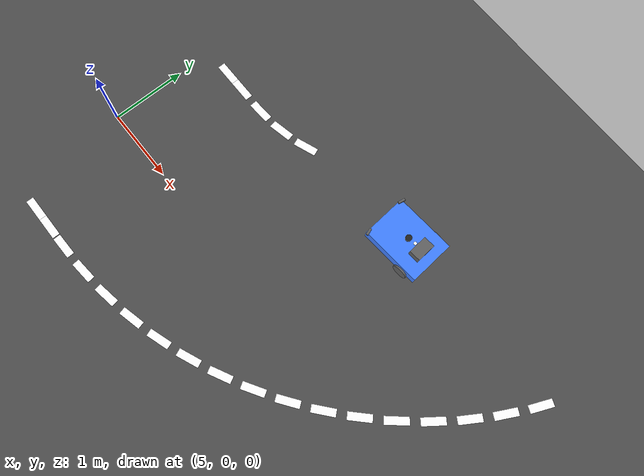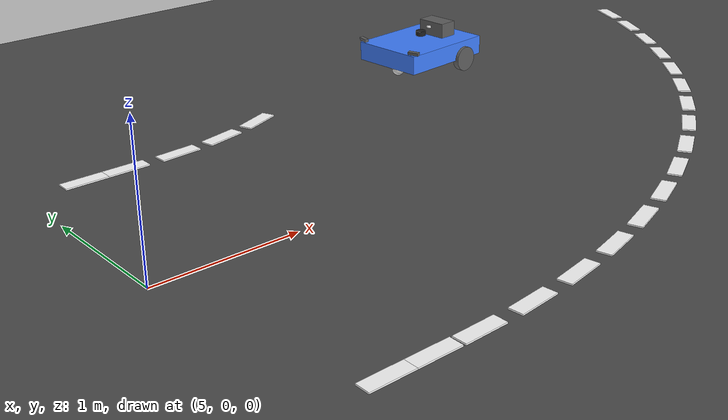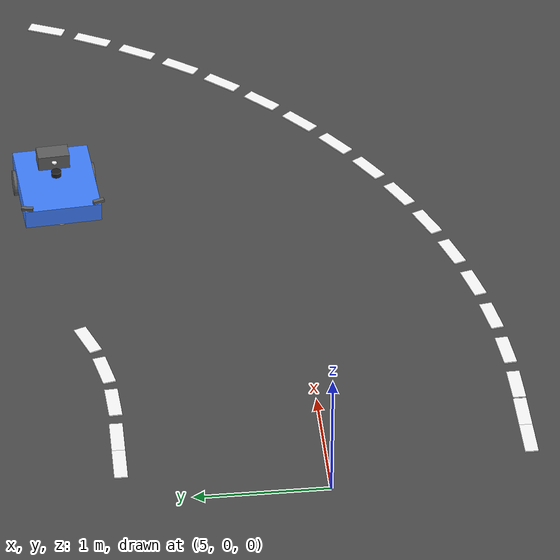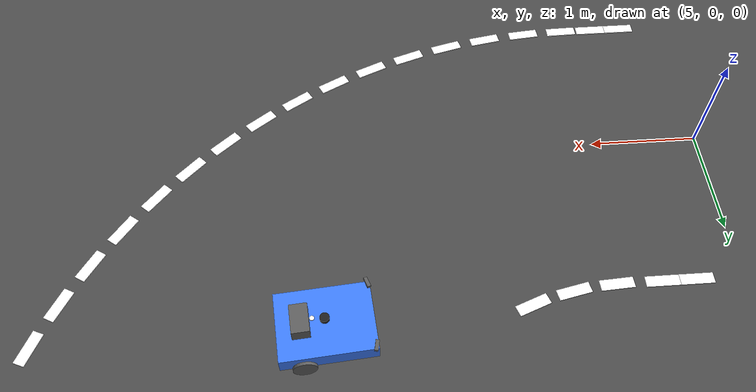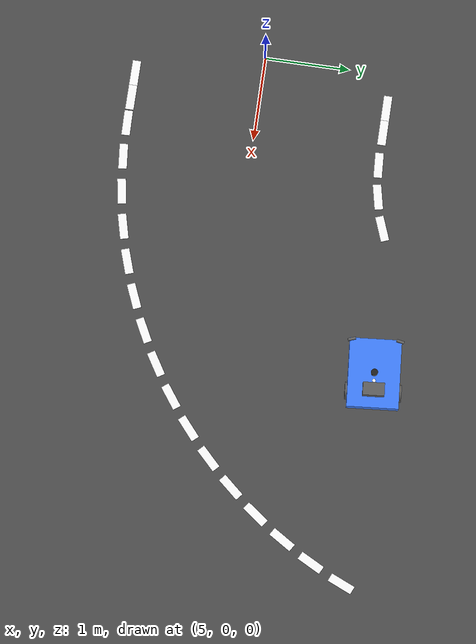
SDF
<sdf version="1.10">
 <world name="igvc_autonav">
  <model name="ground_plane">
   <static>true</static>
   <link name="link">
    <collision name="collision">
     <geometry><plane><normal>0 0 1</normal><size>60 60</size></plane></geometry>
     <surface><friction><ode><mu>0.80000000000000004</mu><mu2>0.80000000000000004</mu2></ode></friction></surface>
    </collision>
    <visual name="visual">
     <geometry><plane><normal>0 0 1</normal><size>60 60</size></plane></geometry>
     <material>
      <ambient>0.25 0.25 0.25 1</ambient>
      <diffuse>0.300000012 0.300000012 0.300000012 1</diffuse>
      <specular>0.100000001 0.100000001 0.100000001 1</specular>
     </material>
    </visual>
    <inertial>
     <mass>1</mass>
     <inertia><ixx>1</ixx><ixy>0</ixy><ixz>0</ixz><iyy>1</iyy><iyz>0</iyz><izz>1</izz></inertia>
    </inertial>
   </link>
  </model>
  <model name="lane_inner_31">
   <static>true</static>
   <pose>5.4000000000000004 1.5 0.01 0 0 0</pose>
   <link name="link">
    <visual name="visual">
     <geometry><box><size>0.29999999999999999 0.10000000000000001 0.01</size></box></geometry>
     <material><ambient>1 1 1 1</ambient><diffuse>1 1 1 1</diffuse><emissive>1 1 1 1</emissive></material>
    </visual>
    <inertial>
     <mass>1</mass>
     <inertia><ixx>1</ixx><ixy>0</ixy><ixz>0</ixz><iyy>1</iyy><iyz>0</iyz><izz>1</izz></inertia>
    </inertial>
   </link>
  </model>
  <model name="lane_inner_32">
   <static>true</static>
   <pose>5.7000000000000002 1.5 0.01 0 0 0</pose>
   <link name="link">
    <visual name="visual">
     <geometry><box><size>0.29999999999999999 0.10000000000000001 0.01</size></box></geometry>
     <material><ambient>1 1 1 1</ambient><diffuse>1 1 1 1</diffuse><emissive>1 1 1 1</emissive></material>
    </visual>
    <inertial>
     <mass>1</mass>
     <inertia><ixx>1</ixx><ixy>0</ixy><ixz>0</ixz><iyy>1</iyy><iyz>0</iyz><izz>1</izz></inertia>
    </inertial>
   </link>
  </model>
  <model name="lane_inner_33">
   <static>true</static>
   <pose>6.0957999999999997 1.5018 0.01 0 0 0.057500000000000002</pose>
   <link name="link">
    <visual name="visual">
     <geometry><box><size>0.29999999999999999 0.10000000000000001 0.01</size></box></geometry>
     <material><ambient>1 1 1 1</ambient><diffuse>1 1 1 1</diffuse><emissive>1 1 1 1</emissive></material>
    </visual>
    <inertial>
     <mass>1</mass>
     <inertia><ixx>1</ixx><ixy>0</ixy><ixz>0</ixz><iyy>1</iyy><iyz>0</iyz><izz>1</izz></inertia>
    </inertial>
   </link>
  </model>
  <model name="lane_inner_34">
   <static>true</static>
   <pose>6.476 1.5457000000000001 0.01 0 0 0.2107</pose>
   <link name="link">
    <visual name="visual">
     <geometry><box><size>0.29999999999999999 0.10000000000000001 0.01</size></box></geometry>
     <material><ambient>1 1 1 1</ambient><diffuse>1 1 1 1</diffuse><emissive>1 1 1 1</emissive></material>
    </visual>
    <inertial>
     <mass>1</mass>
     <inertia><ixx>1</ixx><ixy>0</ixy><ixz>0</ixz><iyy>1</iyy><iyz>0</iyz><izz>1</izz></inertia>
    </inertial>
   </link>
  </model>
  <model name="lane_inner_35">
   <static>true</static>
   <pose>6.8449999999999998 1.6471 0.01 0 0 0.36399999999999999</pose>
   <link name="link">
    <visual name="visual">
     <geometry><box><size>0.29999999999999999 0.10000000000000001 0.01</size></box></geometry>
     <material><ambient>1 1 1 1</ambient><diffuse>1 1 1 1</diffuse><emissive>1 1 1 1</emissive></material>
    </visual>
    <inertial>
     <mass>1</mass>
     <inertia><ixx>1</ixx><ixy>0</ixy><ixz>0</ixz><iyy>1</iyy><iyz>0</iyz><izz>1</izz></inertia>
    </inertial>
   </link>
  </model>
  <model name="lane_outer_31">
   <static>true</static>
   <pose>5.4000000000000004 -1.5 0.01 0 0 0</pose>
   <link name="link">
    <visual name="visual">
     <geometry><box><size>0.29999999999999999 0.10000000000000001 0.01</size></box></geometry>
     <material><ambient>1 1 1 1</ambient><diffuse>1 1 1 1</diffuse><emissive>1 1 1 1</emissive></material>
    </visual>
    <inertial>
     <mass>1</mass>
     <inertia><ixx>1</ixx><ixy>0</ixy><ixz>0</ixz><iyy>1</iyy><iyz>0</iyz><izz>1</izz></inertia>
    </inertial>
   </link>
  </model>
  <model name="lane_outer_32">
   <static>true</static>
   <pose>5.7000000000000002 -1.5 0.01 0 0 0</pose>
   <link name="link">
    <visual name="visual">
     <geometry><box><size>0.29999999999999999 0.10000000000000001 0.01</size></box></geometry>
     <material><ambient>1 1 1 1</ambient><diffuse>1 1 1 1</diffuse><emissive>1 1 1 1</emissive></material>
    </visual>
    <inertial>
     <mass>1</mass>
     <inertia><ixx>1</ixx><ixy>0</ixy><ixz>0</ixz><iyy>1</iyy><iyz>0</iyz><izz>1</izz></inertia>
    </inertial>
   </link>
  </model>
  <model name="lane_outer_33">
   <static>true</static>
   <pose>6.0145 -1.4999 0.01 0 0 0.020200000000000006</pose>
   <link name="link">
    <visual name="visual">
     <geometry><box><size>0.29999999999999999 0.10000000000000001 0.01</size></box></geometry>
     <material><ambient>1 1 1 1</ambient><diffuse>1 1 1 1</diffuse><emissive>1 1 1 1</emissive></material>
    </visual>
    <inertial>
     <mass>1</mass>
     <inertia><ixx>1</ixx><ixy>0</ixy><ixz>0</ixz><iyy>1</iyy><iyz>0</iyz><izz>1</izz></inertia>
    </inertial>
   </link>
  </model>
  <model name="lane_outer_34">
   <static>true</static>
   <pose>6.4210000000000003 -1.4839 0.01 0 0 0.095799999999999996</pose>
   <link name="link">
    <visual name="visual">
     <geometry><box><size>0.29999999999999999 0.10000000000000001 0.01</size></box></geometry>
     <material><ambient>1 1 1 1</ambient><diffuse>1 1 1 1</diffuse><emissive>1 1 1 1</emissive></material>
    </visual>
    <inertial>
     <mass>1</mass>
     <inertia><ixx>1</ixx><ixy>0</ixy><ixz>0</ixz><iyy>1</iyy><iyz>0</iyz><izz>1</izz></inertia>
    </inertial>
   </link>
  </model>
  <model name="lane_outer_35">
   <static>true</static>
   <pose>6.8395999999999999 -1.4355 0.01 0 0 0.1724</pose>
   <link name="link">
    <visual name="visual">
     <geometry><box><size>0.29999999999999999 0.10000000000000001 0.01</size></box></geometry>
     <material><ambient>1 1 1 1</ambient><diffuse>1 1 1 1</diffuse><emissive>1 1 1 1</emissive></material>
    </visual>
    <inertial>
     <mass>1</mass>
     <inertia><ixx>1</ixx><ixy>0</ixy><ixz>0</ixz><iyy>1</iyy><iyz>0</iyz><izz>1</izz></inertia>
    </inertial>
   </link>
  </model>
  <model name="lane_outer_36">
   <static>true</static>
   <pose>7.2531999999999996 -1.3552999999999999 0.01 0 0 0.24899999999999994</pose>
   <link name="link">
    <visual name="visual">
     <geometry><box><size>0.29999999999999999 0.10000000000000001 0.01</size></box></geometry>
     <material><ambient>1 1 1 1</ambient><diffuse>1 1 1 1</diffuse><emissive>1 1 1 1</emissive></material>
    </visual>
    <inertial>
     <mass>1</mass>
     <inertia><ixx>1</ixx><ixy>0</ixy><ixz>0</ixz><iyy>1</iyy><iyz>0</iyz><izz>1</izz></inertia>
    </inertial>
   </link>
  </model>
  <model name="lane_outer_37">
   <static>true</static>
   <pose>7.6595000000000004 -1.2437 0.01 0 0 0.3257000000000001</pose>
   <link name="link">
    <visual name="visual">
     <geometry><box><size>0.29999999999999999 0.10000000000000001 0.01</size></box></geometry>
     <material><ambient>1 1 1 1</ambient><diffuse>1 1 1 1</diffuse><emissive>1 1 1 1</emissive></material>
    </visual>
    <inertial>
     <mass>1</mass>
     <inertia><ixx>1</ixx><ixy>0</ixy><ixz>0</ixz><iyy>1</iyy><iyz>0</iyz><izz>1</izz></inertia>
    </inertial>
   </link>
  </model>
  <model name="lane_outer_38">
   <static>true</static>
   <pose>8.0559999999999992 -1.1012999999999999 0.01 0 0 0.40229999999999999</pose>
   <link name="link">
    <visual name="visual">
     <geometry><box><size>0.29999999999999999 0.10000000000000001 0.01</size></box></geometry>
     <material><ambient>1 1 1 1</ambient><diffuse>1 1 1 1</diffuse><emissive>1 1 1 1</emissive></material>
    </visual>
    <inertial>
     <mass>1</mass>
     <inertia><ixx>1</ixx><ixy>0</ixy><ixz>0</ixz><iyy>1</iyy><iyz>0</iyz><izz>1</izz></inertia>
    </inertial>
   </link>
  </model>
  <model name="lane_outer_39">
   <static>true</static>
   <pose>8.4405000000000001 -0.92889999999999995 0.01 0 0 0.4789000000000001</pose>
   <link name="link">
    <visual name="visual">
     <geometry><box><size>0.29999999999999999 0.10000000000000001 0.01</size></box></geometry>
     <material><ambient>1 1 1 1</ambient><diffuse>1 1 1 1</diffuse><emissive>1 1 1 1</emissive></material>
    </visual>
    <inertial>
     <mass>1</mass>
     <inertia><ixx>1</ixx><ixy>0</ixy><ixz>0</ixz><iyy>1</iyy><iyz>0</iyz><izz>1</izz></inertia>
    </inertial>
   </link>
  </model>
  <model name="lane_outer_40">
   <static>true</static>
   <pose>8.8106000000000009 -0.72760000000000002 0.01 0 0 0.55549999999999999</pose>
   <link name="link">
    <visual name="visual">
     <geometry><box><size>0.29999999999999999 0.10000000000000001 0.01</size></box></geometry>
     <material><ambient>1 1 1 1</ambient><diffuse>1 1 1 1</diffuse><emissive>1 1 1 1</emissive></material>
    </visual>
    <inertial>
     <mass>1</mass>
     <inertia><ixx>1</ixx><ixy>0</ixy><ixz>0</ixz><iyy>1</iyy><iyz>0</iyz><izz>1</izz></inertia>
    </inertial>
   </link>
  </model>
  <model name="lane_outer_41">
   <static>true</static>
   <pose>9.1643000000000008 -0.49859999999999999 0.01 0 0 0.63210000000000011</pose>
   <link name="link">
    <visual name="visual">
     <geometry><box><size>0.29999999999999999 0.10000000000000001 0.01</size></box></geometry>
     <material><ambient>1 1 1 1</ambient><diffuse>1 1 1 1</diffuse><emissive>1 1 1 1</emissive></material>
    </visual>
    <inertial>
     <mass>1</mass>
     <inertia><ixx>1</ixx><ixy>0</ixy><ixz>0</ixz><iyy>1</iyy><iyz>0</iyz><izz>1</izz></inertia>
    </inertial>
   </link>
  </model>
  <model name="lane_outer_42">
   <static>true</static>
   <pose>9.4992999999999999 -0.2432 0.01 0 0 0.70879999999999999</pose>
   <link name="link">
    <visual name="visual">
     <geometry><box><size>0.29999999999999999 0.10000000000000001 0.01</size></box></geometry>
     <material><ambient>1 1 1 1</ambient><diffuse>1 1 1 1</diffuse><emissive>1 1 1 1</emissive></material>
    </visual>
    <inertial>
     <mass>1</mass>
     <inertia><ixx>1</ixx><ixy>0</ixy><ixz>0</ixz><iyy>1</iyy><iyz>0</iyz><izz>1</izz></inertia>
    </inertial>
   </link>
  </model>
  <model name="lane_outer_43">
   <static>true</static>
   <pose>9.8139000000000003 0.037100000000000001 0.01 0 0 0.7854000000000001</pose>
   <link name="link">
    <visual name="visual">
     <geometry><box><size>0.29999999999999999 0.10000000000000001 0.01</size></box></geometry>
     <material><ambient>1 1 1 1</ambient><diffuse>1 1 1 1</diffuse><emissive>1 1 1 1</emissive></material>
    </visual>
    <inertial>
     <mass>1</mass>
     <inertia><ixx>1</ixx><ixy>0</ixy><ixz>0</ixz><iyy>1</iyy><iyz>0</iyz><izz>1</izz></inertia>
    </inertial>
   </link>
  </model>
  <model name="lane_outer_44">
   <static>true</static>
   <pose>10.106 0.3407 0.01 0 0 0.86199999999999977</pose>
   <link name="link">
    <visual name="visual">
     <geometry><box><size>0.29999999999999999 0.10000000000000001 0.01</size></box></geometry>
     <material><ambient>1 1 1 1</ambient><diffuse>1 1 1 1</diffuse><emissive>1 1 1 1</emissive></material>
    </visual>
    <inertial>
     <mass>1</mass>
     <inertia><ixx>1</ixx><ixy>0</ixy><ixz>0</ixz><iyy>1</iyy><iyz>0</iyz><izz>1</izz></inertia>
    </inertial>
   </link>
  </model>
  <model name="lane_outer_45">
   <static>true</static>
   <pose>10.3741 0.66579999999999995 0.01 0 0 0.93859999999999977</pose>
   <link name="link">
    <visual name="visual">
     <geometry><box><size>0.29999999999999999 0.10000000000000001 0.01</size></box></geometry>
     <material><ambient>1 1 1 1</ambient><diffuse>1 1 1 1</diffuse><emissive>1 1 1 1</emissive></material>
    </visual>
    <inertial>
     <mass>1</mass>
     <inertia><ixx>1</ixx><ixy>0</ixy><ixz>0</ixz><iyy>1</iyy><iyz>0</iyz><izz>1</izz></inertia>
    </inertial>
   </link>
  </model>
  <model name="lane_outer_46">
   <static>true</static>
   <pose>10.6165 1.0104 0.01 0 0 1.0153000000000001</pose>
   <link name="link">
    <visual name="visual">
     <geometry><box><size>0.29999999999999999 0.10000000000000001 0.01</size></box></geometry>
     <material><ambient>1 1 1 1</ambient><diffuse>1 1 1 1</diffuse><emissive>1 1 1 1</emissive></material>
    </visual>
    <inertial>
     <mass>1</mass>
     <inertia><ixx>1</ixx><ixy>0</ixy><ixz>0</ixz><iyy>1</iyy><iyz>0</iyz><izz>1</izz></inertia>
    </inertial>
   </link>
  </model>
  <model name="lane_outer_47">
   <static>true</static>
   <pose>10.831799999999999 1.3725000000000001 0.01 0 0 1.0919000000000001</pose>
   <link name="link">
    <visual name="visual">
     <geometry><box><size>0.29999999999999999 0.10000000000000001 0.01</size></box></geometry>
     <material><ambient>1 1 1 1</ambient><diffuse>1 1 1 1</diffuse><emissive>1 1 1 1</emissive></material>
    </visual>
    <inertial>
     <mass>1</mass>
     <inertia><ixx>1</ixx><ixy>0</ixy><ixz>0</ixz><iyy>1</iyy><iyz>0</iyz><izz>1</izz></inertia>
    </inertial>
   </link>
  </model>
  <model name="lane_outer_48">
   <static>true</static>
   <pose>11.018800000000001 1.7501 0.01 0 0 1.1684999999999999</pose>
   <link name="link">
    <visual name="visual">
     <geometry><box><size>0.29999999999999999 0.10000000000000001 0.01</size></box></geometry>
     <material><ambient>1 1 1 1</ambient><diffuse>1 1 1 1</diffuse><emissive>1 1 1 1</emissive></material>
    </visual>
    <inertial>
     <mass>1</mass>
     <inertia><ixx>1</ixx><ixy>0</ixy><ixz>0</ixz><iyy>1</iyy><iyz>0</iyz><izz>1</izz></inertia>
    </inertial>
   </link>
  </model>
  <model name="littleblue">
   <link name="base_footprint">
    <inertial>
     <pose>0.0052110490378646799 0 0.10789804469273739 0 0 0</pose>
     <mass>21.48</mass>
     <inertia>
      <ixx>0.69560734671787716</ixx>
      <ixy>0</ixy>
      <ixz>0.01548872113594041</ixz>
      <iyy>1.232266278851128</iyy>
      <iyz>8.6736173798840355e-19</iyz>
      <izz>1.772994932133251</izz>
     </inertia>
    </inertial>
    <collision name="base_footprint_fixed_joint_lump__base_link_collision">
     <pose>0 0 0.17499999999999999 0 0 0</pose>
     <geometry><box><size>0.80000000000000004 0.59999999999999998 0.14999999999999999</size></box></geometry>
    </collision>
    <collision name="base_footprint_fixed_joint_lump__caster_link_collision_1">
     <pose>0.26666666666666672 0 0.050000000000000003 0 0 0</pose>
     <geometry><sphere><radius>0.050000000000000003</radius></sphere></geometry>
     <surface><friction><ode><mu>0</mu><mu2>0</mu2></ode></friction></surface>
    </collision>
    <collision name="base_footprint_fixed_joint_lump__left_camera_link_collision_2">
     <pose>0.38 0.28000000000000003 0.27000000000000002 -1.5675956063271568e-17 0.090000000000000191 0.26000000000000001</pose>
     <geometry><box><size>0.029999999999999999 0.089999999999999997 0.025000000000000001</size></box></geometry>
    </collision>
    <collision name="base_footprint_fixed_joint_lump__lidar_link_collision_3">
     <pose>0 0 0.29999999999999999 0 0 0</pose>
     <geometry>
      <cylinder><length>0.040000000000000001</length><radius>0.040000000000000001</radius></cylinder>
     </geometry>
    </collision>
    <collision name="base_footprint_fixed_joint_lump__rear_electronics_link_collision_4">
     <pose>-0.20000000000000001 0 0.31 0 0 0</pose>
     <geometry><box><size>0.14999999999999999 0.25 0.12</size></box></geometry>
    </collision>
    <collision name="base_footprint_fixed_joint_lump__right_camera_link_collision_5">
     <pose>0.38 -0.28000000000000003 0.27000000000000002 1.5675956063271568e-17 0.090000000000000191 -0.26000000000000001</pose>
     <geometry><box><size>0.029999999999999999 0.089999999999999997 0.025000000000000001</size></box></geometry>
    </collision>
    <visual name="base_footprint_fixed_joint_lump__base_link_visual">
     <pose>0 0 0.17499999999999999 0 0 0</pose>
     <geometry><box><size>0.80000000000000004 0.59999999999999998 0.14999999999999999</size></box></geometry>
     <material><diffuse>0.25 0.5 1 1</diffuse><ambient>0.25 0.5 1 1</ambient></material>
    </visual>
    <visual name="base_footprint_fixed_joint_lump__caster_link_visual_1">
     <pose>0.26666666666666672 0 0.050000000000000003 0 0 0</pose>
     <geometry><sphere><radius>0.050000000000000003</radius></sphere></geometry>
     <material><diffuse>0.875 0.875 0.875 1</diffuse><ambient>0.875 0.875 0.875 1</ambient></material>
    </visual>
    <visual name="base_footprint_fixed_joint_lump__gps_link_visual_2">
     <pose>-0.10000000000000001 0 0.33000000000000002 0 0 0</pose>
     <geometry><cylinder><length>0.01</length><radius>0.02</radius></cylinder></geometry>
     <material><diffuse>1 1 1 1</diffuse><ambient>1 1 1 1</ambient></material>
    </visual>
    <visual name="base_footprint_fixed_joint_lump__left_camera_link_visual_3">
     <pose>0.38 0.28000000000000003 0.27000000000000002 -1.5675956063271568e-17 0.090000000000000191 0.26000000000000001</pose>
     <geometry><box><size>0.029999999999999999 0.089999999999999997 0.025000000000000001</size></box></geometry>
     <material>
      <diffuse>0.37500003 0.37500003 0.37500003 1</diffuse>
      <ambient>0.37500003 0.37500003 0.37500003 1</ambient>
     </material>
    </visual>
    <visual name="base_footprint_fixed_joint_lump__lidar_link_visual_4">
     <pose>0 0 0.29999999999999999 0 0 0</pose>
     <geometry>
      <cylinder><length>0.040000000000000001</length><radius>0.040000000000000001</radius></cylinder>
     </geometry>
     <material><diffuse>0.125 0.125 0.125 1</diffuse><ambient>0.125 0.125 0.125 1</ambient></material>
    </visual>
    <visual name="base_footprint_fixed_joint_lump__rear_electronics_link_visual_5">
     <pose>-0.20000000000000001 0 0.31 0 0 0</pose>
     <geometry><box><size>0.14999999999999999 0.25 0.12</size></box></geometry>
     <material>
      <diffuse>0.37500003 0.37500003 0.37500003 1</diffuse>
      <ambient>0.37500003 0.37500003 0.37500003 1</ambient>
     </material>
    </visual>
    <visual name="base_footprint_fixed_joint_lump__right_camera_link_visual_6">
     <pose>0.38 -0.28000000000000003 0.27000000000000002 1.5675956063271568e-17 0.090000000000000191 -0.26000000000000001</pose>
     <geometry><box><size>0.029999999999999999 0.089999999999999997 0.025000000000000001</size></box></geometry>
     <material>
      <diffuse>0.37500003 0.37500003 0.37500003 1</diffuse>
      <ambient>0.37500003 0.37500003 0.37500003 1</ambient>
     </material>
    </visual>
    <sensor name="navsat_sensor" type="navsat">
     <always_on>true</always_on>
     <update_rate>1</update_rate>
     <topic>gps/fix</topic>
     <navsat>
      <position_sensing>
       <horizontal><noise type="gaussian"><mean>0</mean><stddev>5.0000000000000004e-06</stddev></noise></horizontal>
       <vertical><noise type="gaussian"><mean>0</mean><stddev>1.0000000000000001e-05</stddev></noise></vertical>
      </position_sensing>
     </navsat>
     <pose>-0.10000000000000001 0 0.33000000000000002 0 0 0</pose>
    </sensor>
    <sensor name="imu_sensor" type="imu">
     <pose>0 0 0.17499999999999999 0 0 0</pose>
     <topic>imu/data</topic>
     <update_rate>100</update_rate>
     <enable_metrics>false</enable_metrics>
     <imu>
      <orientation_reference_frame>
       <localization>CUSTOM</localization>
       <custom_rpy>0 0 0</custom_rpy>
       <grav_dir_x>1 0 0</grav_dir_x>
      </orientation_reference_frame>
      <angular_velocity>
       <x>
        <noise type="gaussian">
         <mean>0</mean>
         <stddev>0.00020000000000000001</stddev>
         <bias_mean>0</bias_mean>
         <bias_stddev>0</bias_stddev>
         <dynamic_bias_stddev>0</dynamic_bias_stddev>
         <dynamic_bias_correlation_time>0</dynamic_bias_correlation_time>
         <precision>0</precision>
        </noise>
       </x>
       <y>
        <noise type="gaussian">
         <mean>0</mean>
         <stddev>0.00020000000000000001</stddev>
         <bias_mean>0</bias_mean>
         <bias_stddev>0</bias_stddev>
         <dynamic_bias_stddev>0</dynamic_bias_stddev>
         <dynamic_bias_correlation_time>0</dynamic_bias_correlation_time>
         <precision>0</precision>
        </noise>
       </y>
       <z>
        <noise type="gaussian">
         <mean>0</mean>
         <stddev>0.00020000000000000001</stddev>
         <bias_mean>0</bias_mean>
         <bias_stddev>0</bias_stddev>
         <dynamic_bias_stddev>0</dynamic_bias_stddev>
         <dynamic_bias_correlation_time>0</dynamic_bias_correlation_time>
         <precision>0</precision>
        </noise>
       </z>
      </angular_velocity>
      <linear_acceleration>
       <x>
        <noise type="gaussian">
         <mean>0</mean>
         <stddev>0.017000000000000001</stddev>
         <bias_mean>0</bias_mean>
         <bias_stddev>0</bias_stddev>
         <dynamic_bias_stddev>0</dynamic_bias_stddev>
         <dynamic_bias_correlation_time>0</dynamic_bias_correlation_time>
         <precision>0</precision>
        </noise>
       </x>
       <y>
        <noise type="gaussian">
         <mean>0</mean>
         <stddev>0.017000000000000001</stddev>
         <bias_mean>0</bias_mean>
         <bias_stddev>0</bias_stddev>
         <dynamic_bias_stddev>0</dynamic_bias_stddev>
         <dynamic_bias_correlation_time>0</dynamic_bias_correlation_time>
         <precision>0</precision>
        </noise>
       </y>
       <z>
        <noise type="gaussian">
         <mean>0</mean>
         <stddev>0.017000000000000001</stddev>
         <bias_mean>0</bias_mean>
         <bias_stddev>0</bias_stddev>
         <dynamic_bias_stddev>0</dynamic_bias_stddev>
         <dynamic_bias_correlation_time>0</dynamic_bias_correlation_time>
         <precision>0</precision>
        </noise>
       </z>
      </linear_acceleration>
      <enable_orientation>true</enable_orientation>
     </imu>
    </sensor>
    <sensor name="left_rgb_camera" type="camera">
     <pose>0.38 0.28000000000000003 0.27000000000000002 -2.4384820542866883e-17 0.090000000000000052 0.26000000000000001</pose>
     <topic>left_camera/image_raw</topic>
     <update_rate>15</update_rate>
     <enable_metrics>false</enable_metrics>
     <camera>
      <horizontal_fov>1.4835</horizontal_fov>
      <image><width>640</width><height>480</height><format>RGB_INT8</format><anti_aliasing>4</anti_aliasing></image>
      <camera_info_topic>__default__</camera_info_topic>
      <triggered>false</triggered>
      <clip><near>0.10000000000000001</near><far>100</far></clip>
      <save enabled="false"><path>__default__</path></save>
      <visibility_mask>4294967295</visibility_mask>
      <noise><type>none</type><mean>0</mean><stddev>0</stddev></noise>
      <distortion><k1>0</k1><k2>0</k2><k3>0</k3><p1>0</p1><p2>0</p2><center>0.5 0.5</center></distortion>
      <lens>
       <type>stereographic</type>
       <scale_to_hfov>true</scale_to_hfov>
       <cutoff_angle>1.5707963267948966</cutoff_angle>
       <env_texture_size>256</env_texture_size>
      </lens>
     </camera>
    </sensor>
    <sensor name="gpu_lidar" type="gpu_lidar">
     <pose>0 0 0.29999999999999999 0 0 0</pose>
     <topic>scan</topic>
     <update_rate>10</update_rate>
     <enable_metrics>false</enable_metrics>
     <lidar>
      <scan>
       <horizontal>
        <samples>270</samples>
        <resolution>1</resolution>
        <min_angle>-2.3561899999999998</min_angle>
        <max_angle>2.3561899999999998</max_angle>
       </horizontal>
       <vertical>
        <samples>1</samples>
        <min_angle>0</min_angle>
        <max_angle>0</max_angle>
        <resolution>1</resolution>
       </vertical>
      </scan>
      <range><min>0.14999999999999999</min><max>30</max><resolution>0.01</resolution></range>
      <noise><type>gaussian</type><mean>0</mean><stddev>0.01</stddev></noise>
      <visibility_mask>4294967295</visibility_mask>
     </lidar>
    </sensor>
    <sensor name="right_rgb_camera" type="camera">
     <pose>0.38 -0.28000000000000003 0.27000000000000002 2.4384820542866883e-17 0.090000000000000052 -0.26000000000000001</pose>
     <topic>right_camera/image_raw</topic>
     <update_rate>15</update_rate>
     <enable_metrics>false</enable_metrics>
     <camera>
      <horizontal_fov>1.4835</horizontal_fov>
      <image><width>640</width><height>480</height><format>RGB_INT8</format><anti_aliasing>4</anti_aliasing></image>
      <camera_info_topic>__default__</camera_info_topic>
      <triggered>false</triggered>
      <clip><near>0.10000000000000001</near><far>100</far></clip>
      <save enabled="false"><path>__default__</path></save>
      <visibility_mask>4294967295</visibility_mask>
      <noise><type>none</type><mean>0</mean><stddev>0</stddev></noise>
      <distortion><k1>0</k1><k2>0</k2><k3>0</k3><p1>0</p1><p2>0</p2><center>0.5 0.5</center></distortion>
      <lens>
       <type>stereographic</type>
       <scale_to_hfov>true</scale_to_hfov>
       <cutoff_angle>1.5707963267948966</cutoff_angle>
       <env_texture_size>256</env_texture_size>
      </lens>
     </camera>
    </sensor>
   </link>
   <joint name="left_wheel_joint" type="revolute">
    <pose>8.3266699999999998e-17 -8.3266699999999998e-17 0 0 5.5511199999999995e-17 0</pose>
    <parent>base_footprint</parent>
    <child>left_wheel_link</child>
    <axis>
     <xyz>1.1102230246251565e-16 0 1</xyz>
     <limit>
      <lower>-inf</lower>
      <upper>inf</upper>
      <effort>inf</effort>
      <velocity>inf</velocity>
      <stiffness>100000000</stiffness>
      <dissipation>1</dissipation>
     </limit>
     <dynamics>
      <spring_reference>0</spring_reference>
      <spring_stiffness>0</spring_stiffness>
      <damping>0.10000000000000001</damping>
      <friction>0.10000000000000001</friction>
     </dynamics>
    </axis>
   </joint>
   <link name="left_wheel_link">
    <pose>-0.20000000000000107 0.30000000000000804 0.099999999999999534 -1.5707963267949023 -0.92028029733366423 5.3164828950280245e-15</pose>
    <inertial>
     <mass>1</mass>
     <inertia>
      <ixx>0.0027083333333333339</ixx>
      <ixy>0</ixy>
      <ixz>0</ixz>
      <iyy>0.0027083333333333339</iyy>
      <iyz>0</iyz>
      <izz>0.005000000000000001</izz>
     </inertia>
    </inertial>
    <collision name="left_wheel_link_collision">
     <geometry>
      <cylinder><length>0.050000000000000003</length><radius>0.10000000000000001</radius></cylinder>
     </geometry>
    </collision>
    <visual name="left_wheel_link_visual">
     <geometry>
      <cylinder><length>0.050000000000000003</length><radius>0.10000000000000001</radius></cylinder>
     </geometry>
     <material>
      <diffuse>0.37500003 0.37500003 0.37500003 1</diffuse>
      <ambient>0.37500003 0.37500003 0.37500003 1</ambient>
     </material>
    </visual>
   </link>
   <joint name="right_wheel_joint" type="revolute">
    <pose>0 -1.6653299999999999e-16 -1.11022e-16 0 0 0</pose>
    <parent>base_footprint</parent>
    <child>right_wheel_link</child>
    <axis>
     <xyz>0 0 1</xyz>
     <limit>
      <lower>-inf</lower>
      <upper>inf</upper>
      <effort>inf</effort>
      <velocity>inf</velocity>
      <stiffness>100000000</stiffness>
      <dissipation>1</dissipation>
     </limit>
     <dynamics>
      <spring_reference>0</spring_reference>
      <spring_stiffness>0</spring_stiffness>
      <damping>0.10000000000000001</damping>
      <friction>0.10000000000000001</friction>
     </dynamics>
    </axis>
   </joint>
   <link name="right_wheel_link">
    <pose>-0.19999999999999751 -0.29999999999999671 0.10000000000000005 -1.5707963267948966 0.18789923830752037 3.5316074259534446e-16</pose>
    <inertial>
     <mass>1</mass>
     <inertia>
      <ixx>0.0027083333333333339</ixx>
      <ixy>0</ixy>
      <ixz>0</ixz>
      <iyy>0.0027083333333333339</iyy>
      <iyz>0</iyz>
      <izz>0.005000000000000001</izz>
     </inertia>
    </inertial>
    <collision name="right_wheel_link_collision">
     <geometry>
      <cylinder><length>0.050000000000000003</length><radius>0.10000000000000001</radius></cylinder>
     </geometry>
    </collision>
    <visual name="right_wheel_link_visual">
     <geometry>
      <cylinder><length>0.050000000000000003</length><radius>0.10000000000000001</radius></cylinder>
     </geometry>
     <material>
      <diffuse>0.37500003 0.37500003 0.37500003 1</diffuse>
      <ambient>0.37500003 0.37500003 0.37500003 1</ambient>
     </material>
    </visual>
   </link>
   <plugin name="ignition::gazebo::systems::DiffDrive" filename="ignition-gazebo-diff-drive-system">
    <left_joint>left_wheel_joint</left_joint>
    <right_joint>right_wheel_joint</right_joint>
    <wheel_separation>0.6000000000000001</wheel_separation>
    <wheel_radius>0.1</wheel_radius>
    <max_linear_acceleration>1.0</max_linear_acceleration>
    <max_angular_acceleration>2.0</max_angular_acceleration>
    <odom_publish_frequency>100</odom_publish_frequency>
    <topic>cmd_vel</topic>
    <odom_topic>odom</odom_topic>
    <tf_topic>tf</tf_topic>
    <frame_id>odom</frame_id>
    <child_frame_id>base_footprint</child_frame_id>
   </plugin>
   <plugin name="ignition::gazebo::systems::JointStatePublisher" filename="ignition-gazebo-joint-state-publisher-system">
    <topic>joint_states</topic>
    <joint_name>left_wheel_joint</joint_name>
    <joint_name>right_wheel_joint</joint_name>
   </plugin>
   <frame name="caster_joint" attached_to="base_link">
    <pose>0.26666666666666672 0 -0.050000000000000003 0 0 0</pose>
   </frame>
   <frame name="caster_link" attached_to="caster_joint"/>
   <frame name="gps_joint" attached_to="base_link">
    <pose>-0.10000000000000001 0 0.23000000000000001 0 0 0</pose>
   </frame>
   <frame name="gps_link" attached_to="gps_joint"/>
   <frame name="imu_joint" attached_to="base_link"><pose>0 0 0.074999999999999997 0 0 0</pose></frame>
   <frame name="imu_link" attached_to="imu_joint"/>
   <frame name="left_camera_optical_joint" attached_to="left_camera_link">
    <pose>0 0 0 -1.5707963267948959 -5.5511151231257827e-17 -1.5707963267948959</pose>
   </frame>
   <frame name="left_camera_optical_link" attached_to="left_camera_optical_joint"/>
   <frame name="left_depth_camera_optical_joint" attached_to="left_depth_camera_link">
    <pose>0 0 0 -1.5707963267948959 -5.5511151231257827e-17 -1.5707963267948959</pose>
   </frame>
   <frame name="left_depth_camera_optical_link" attached_to="left_depth_camera_optical_joint"/>
   <frame name="left_depth_camera_joint" attached_to="left_camera_link"/>
   <frame name="left_depth_camera_link" attached_to="left_depth_camera_joint"/>
   <frame name="left_camera_joint" attached_to="base_link">
    <pose>0.38 0.28000000000000003 0.17000000000000001 -1.7417728959190631e-17 0.090000000000000219 0.26000000000000001</pose>
   </frame>
   <frame name="left_camera_link" attached_to="left_camera_joint"/>
   <frame name="lidar_joint" attached_to="base_link"><pose>0 0 0.20000000000000001 0 0 0</pose></frame>
   <frame name="lidar_link" attached_to="lidar_joint"/>
   <frame name="rear_electronics_joint" attached_to="base_link">
    <pose>-0.20000000000000001 0 0.20999999999999999 0 0 0</pose>
   </frame>
   <frame name="rear_electronics_link" attached_to="rear_electronics_joint"/>
   <frame name="right_camera_optical_joint" attached_to="right_camera_link">
    <pose>0 0 0 -1.5707963267948959 -5.5511151231257827e-17 -1.5707963267948959</pose>
   </frame>
   <frame name="right_camera_optical_link" attached_to="right_camera_optical_joint"/>
   <frame name="right_depth_camera_optical_joint" attached_to="right_depth_camera_link">
    <pose>0 0 0 -1.5707963267948959 -5.5511151231257827e-17 -1.5707963267948959</pose>
   </frame>
   <frame name="right_depth_camera_optical_link" attached_to="right_depth_camera_optical_joint"/>
   <frame name="right_depth_camera_joint" attached_to="right_camera_link"/>
   <frame name="right_depth_camera_link" attached_to="right_depth_camera_joint"/>
   <frame name="right_camera_joint" attached_to="base_link">
    <pose>0.38 -0.28000000000000003 0.17000000000000001 1.7417728959190631e-17 0.090000000000000219 -0.26000000000000001</pose>
   </frame>
   <frame name="right_camera_link" attached_to="right_camera_joint"/>
   <frame name="base_joint" attached_to="base_footprint"><pose>0 0 0.10000000000000001 0 0 0</pose></frame>
   <frame name="base_link" attached_to="base_joint"/>
   <pose>8.5894489288330078 1.7847338914871214 1.578028559379109e-06 -5.972659503065637e-09 2.7829099824608928e-07 -3.0581999973167151</pose>
   <static>false</static>
  </model>
 </world>
</sdf>
